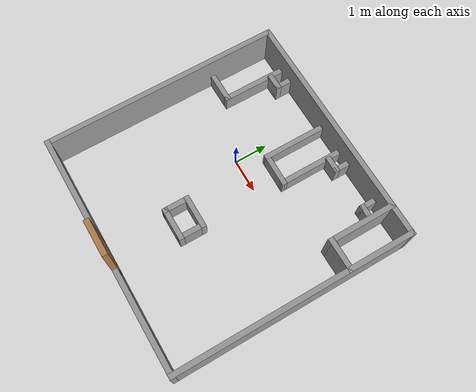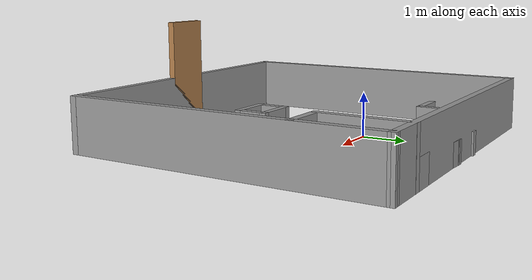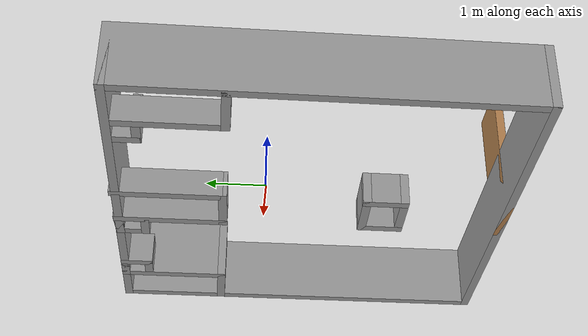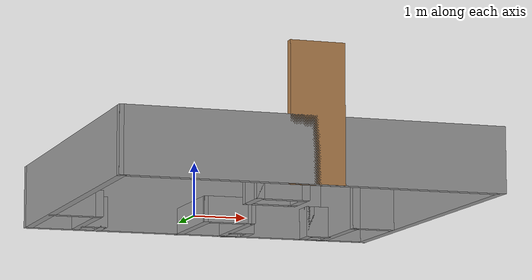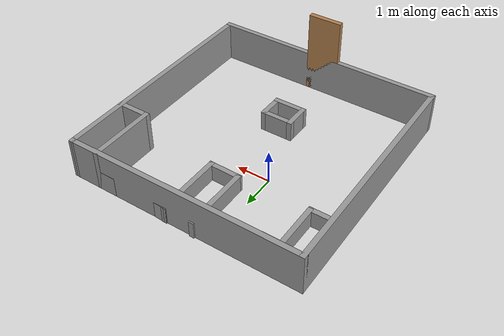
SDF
<?xml version='1.0'?>
<sdf version='1.7'>
  <model name='map1'>
    <pose>0.875504 -0.845948 0 0 -0 0</pose>
    <link name='Wall_2'>
      <collision name='Wall_2_Collision'>
        <geometry>
          <box>
            <size>7.0263 0.15 1.2</size>
          </box>
        </geometry>
        <pose>0 0 0.6 0 -0 0</pose>
      </collision>
      <visual name='Wall_2_Visual'>
        <pose>0 0 0.6 0 -0 0</pose>
        <geometry>
          <box>
            <size>7.0263 0.15 1.2</size>
          </box>
        </geometry>
        <material>
          <script>
            <uri>file://media/materials/scripts/gazebo.material</uri>
            <name>Gazebo/Grey</name>
          </script>
          <ambient>1 1 1 1</ambient>
        </material>
        <meta>
          <layer>0</layer>
        </meta>
      </visual>
      <pose>0.006496 -3.45405 0 0 -0 3.14159</pose>
    </link>
    <link name='Wall_23'>
      <collision name='Wall_23_Collision'>
        <geometry>
          <box>
            <size>2.00011 0.15 0.5</size>
          </box>
        </geometry>
        <pose>0 0 0.25 0 -0 0</pose>
      </collision>
      <visual name='Wall_23_Visual'>
        <pose>0 0 0.25 0 -0 0</pose>
        <geometry>
          <box>
            <size>2.00011 0.15 0.5</size>
          </box>
        </geometry>
        <material>
          <script>
            <uri>file://media/materials/scripts/gazebo.material</uri>
            <name>Gazebo/Grey</name>
          </script>
          <ambient>1 1 1 1</ambient>
        </material>
        <meta>
          <layer>0</layer>
        </meta>
      </visual>
      <pose>-2.5355 2.47095 0 0 -0 1.5708</pose>
    </link>
    <link name='Wall_29'>
      <collision name='Wall_29_Collision'>
        <geometry>
          <box>
            <size>0.6 0.15 0.6</size>
          </box>
        </geometry>
        <pose>0 0 0.3 0 -0 0</pose>
      </collision>
      <visual name='Wall_29_Visual'>
        <pose>0 0 0.3 0 -0 0</pose>
        <geometry>
          <box>
            <size>0.6 0.15 0.6</size>
          </box>
        </geometry>
        <material>
          <script>
            <uri>file://media/materials/scripts/gazebo.material</uri>
            <name>Gazebo/Grey</name>
          </script>
          <ambient>1 1 1 1</ambient>
        </material>
        <meta>
          <layer>0</layer>
        </meta>
      </visual>
      <pose>-2.0855 3.17095 0 0 -0 -1.5708</pose>
    </link>
    <link name='Wall_3'>
      <collision name='Wall_3_Collision'>
        <geometry>
          <box>
            <size>7.01301 0.15 1.2</size>
          </box>
        </geometry>
        <pose>0 0 0.6 0 -0 0</pose>
      </collision>
      <visual name='Wall_3_Visual'>
        <pose>0 0 0.6 0 -0 0</pose>
        <geometry>
          <box>
            <size>7.01301 0.15 1.2</size>
          </box>
        </geometry>
        <material>
          <script>
            <uri>file://media/materials/scripts/gazebo.material</uri>
            <name>Gazebo/Grey</name>
          </script>
          <ambient>1 1 1 1</ambient>
        </material>
        <meta>
          <layer>0</layer>
        </meta>
      </visual>
      <pose>-3.438 -0.022552 0 0 -0 1.57269</pose>
    </link>
    <link name='Wall_31'>
      <collision name='Wall_31_Collision'>
        <geometry>
          <box>
            <size>0.5 0.15 0.6</size>
          </box>
        </geometry>
        <pose>0 0 0.3 0 -0 0</pose>
      </collision>
      <visual name='Wall_31_Visual'>
        <pose>0 0 0.3 0 -0 0</pose>
        <geometry>
          <box>
            <size>0.5 0.15 0.6</size>
          </box>
        </geometry>
        <material>
          <script>
            <uri>file://media/materials/scripts/gazebo.material</uri>
            <name>Gazebo/Grey</name>
          </script>
          <ambient>1 1 1 1</ambient>
        </material>
        <meta>
          <layer>0</layer>
        </meta>
      </visual>
      <pose>-2.2605 2.94595 0 0 -0 3.14159</pose>
    </link>
    <link name='Wall_39'>
      <collision name='Wall_39_Collision'>
        <geometry>
          <box>
            <size>1 0.15 2.5</size>
          </box>
        </geometry>
        <pose>0 0 1.25 0 -0 0</pose>
      </collision>
      <visual name='Wall_39_Visual'>
        <pose>0 0 1.25 0 -0 0</pose>
        <geometry>
          <box>
            <size>1 0.15 2.5</size>
          </box>
        </geometry>
        <material>
          <script>
            <uri>file://media/materials/scripts/gazebo.material</uri>
            <name>Gazebo/Wood</name>
          </script>
          <ambient>1 1 1 1</ambient>
        </material>
        <meta>
          <layer>0</layer>
        </meta>
      </visual>
      <pose>0.019496 -3.45405 0 0 -0 3.14159</pose>
    </link>
    <link name='Wall_4'>
      <collision name='Wall_4_Collision'>
        <geometry>
          <box>
            <size>7.039 0.15 1.2</size>
          </box>
        </geometry>
        <pose>0 0 0.6 0 -0 0</pose>
      </collision>
      <visual name='Wall_4_Visual'>
        <pose>0 0 0.6 0 -0 0</pose>
        <geometry>
          <box>
            <size>7.039 0.15 1.2</size>
          </box>
        </geometry>
        <material>
          <script>
            <uri>file://media/materials/scripts/gazebo.material</uri>
            <name>Gazebo/Grey</name>
          </script>
          <ambient>1 1 1 1</ambient>
        </material>
        <meta>
          <layer>0</layer>
        </meta>
      </visual>
      <pose>-4e-06 3.41545 0 0 -0 0.001887</pose>
    </link>
    <link name='Wall_43'>
      <collision name='Wall_43_Collision'>
        <geometry>
          <box>
            <size>1.0001 0.15 0.6</size>
          </box>
        </geometry>
        <pose>0 0 0.3 0 -0 0</pose>
      </collision>
      <visual name='Wall_43_Visual'>
        <pose>0 0 0.3 0 -0 0</pose>
        <geometry>
          <box>
            <size>1.0001 0.15 0.6</size>
          </box>
        </geometry>
        <material>
          <script>
            <uri>file://media/materials/scripts/gazebo.material</uri>
            <name>Gazebo/Grey</name>
          </script>
          <ambient>1 1 1 1</ambient>
        </material>
        <meta>
          <layer>0</layer>
        </meta>
      </visual>
      <pose>0.019496 -1.60405 0 0 -0 0</pose>
    </link>
    <link name='Wall_44'>
      <collision name='Wall_44_Collision'>
        <geometry>
          <box>
            <size>0.813 0.15 0.6</size>
          </box>
        </geometry>
        <pose>0 0 0.3 0 -0 0</pose>
      </collision>
      <visual name='Wall_44_Visual'>
        <pose>0 0 0.3 0 -0 0</pose>
        <geometry>
          <box>
            <size>0.813 0.15 0.6</size>
          </box>
        </geometry>
        <material>
          <script>
            <uri>file://media/materials/scripts/gazebo.material</uri>
            <name>Gazebo/Grey</name>
          </script>
          <ambient>1 1 1 1</ambient>
        </material>
        <meta>
          <layer>0</layer>
        </meta>
      </visual>
      <pose>0.444496 -1.27255 0 0 -0 1.5708</pose>
    </link>
    <link name='Wall_45'>
      <collision name='Wall_45_Collision'>
        <geometry>
          <box>
            <size>1.0001 0.15 0.6</size>
          </box>
        </geometry>
        <pose>0 0 0.3 0 -0 0</pose>
      </collision>
      <visual name='Wall_45_Visual'>
        <pose>0 0 0.3 0 -0 0</pose>
        <geometry>
          <box>
            <size>1.0001 0.15 0.6</size>
          </box>
        </geometry>
        <material>
          <script>
            <uri>file://media/materials/scripts/gazebo.material</uri>
            <name>Gazebo/Grey</name>
          </script>
          <ambient>1 1 1 1</ambient>
        </material>
        <meta>
          <layer>0</layer>
        </meta>
      </visual>
      <pose>0.019496 -0.941052 0 0 -0 3.14159</pose>
    </link>
    <link name='Wall_46'>
      <collision name='Wall_46_Collision'>
        <geometry>
          <box>
            <size>0.813 0.15 0.6</size>
          </box>
        </geometry>
        <pose>0 0 0.3 0 -0 0</pose>
      </collision>
      <visual name='Wall_46_Visual'>
        <pose>0 0 0.3 0 -0 0</pose>
        <geometry>
          <box>
            <size>0.813 0.15 0.6</size>
          </box>
        </geometry>
        <material>
          <script>
            <uri>file://media/materials/scripts/gazebo.material</uri>
            <name>Gazebo/Grey</name>
          </script>
          <ambient>1 1 1 1</ambient>
        </material>
        <meta>
          <layer>0</layer>
        </meta>
      </visual>
      <pose>-0.405504 -1.27255 0 0 -0 -1.5708</pose>
    </link>
    <link name='Wall_5'>
      <collision name='Wall_5_Collision'>
        <geometry>
          <box>
            <size>7.026 0.15 1.2</size>
          </box>
        </geometry>
        <pose>0 0 0.6 0 -0 0</pose>
      </collision>
      <visual name='Wall_5_Visual'>
        <pose>0 0 0.6 0 -0 0</pose>
        <geometry>
          <box>
            <size>7.026 0.15 1.2</size>
          </box>
        </geometry>
        <material>
          <script>
            <uri>file://media/materials/scripts/gazebo.material</uri>
            <name>Gazebo/Grey</name>
          </script>
          <ambient>1 1 1 1</ambient>
        </material>
        <meta>
          <layer>0</layer>
        </meta>
      </visual>
      <pose>3.4445 -0.016052 0 0 -0 -1.5708</pose>
    </link>
    <link name='Wall_50'>
      <collision name='Wall_50_Collision'>
        <geometry>
          <box>
            <size>2.03025 0.15 0.5</size>
          </box>
        </geometry>
        <pose>0 0 0.25 0 -0 0</pose>
      </collision>
      <visual name='Wall_50_Visual'>
        <pose>0 0 0.25 0 -0 0</pose>
        <geometry>
          <box>
            <size>2.03025 0.15 0.5</size>
          </box>
        </geometry>
        <material>
          <script>
            <uri>file://media/materials/scripts/gazebo.material</uri>
            <name>Gazebo/Grey</name>
          </script>
          <ambient>1 1 1 1</ambient>
        </material>
        <meta>
          <layer>0</layer>
        </meta>
      </visual>
      <pose>0.459496 2.49907 0 0 -0 -1.5708</pose>
    </link>
    <link name='Wall_51'>
      <collision name='Wall_51_Collision'>
        <geometry>
          <box>
            <size>1.01513 0.15 0.5</size>
          </box>
        </geometry>
        <pose>0 0 0.25 0 -0 0</pose>
      </collision>
      <visual name='Wall_51_Visual'>
        <pose>0 0 0.25 0 -0 0</pose>
        <geometry>
          <box>
            <size>1.01513 0.15 0.5</size>
          </box>
        </geometry>
        <material>
          <script>
            <uri>file://media/materials/scripts/gazebo.material</uri>
            <name>Gazebo/Grey</name>
          </script>
          <ambient>1 1 1 1</ambient>
        </material>
        <meta>
          <layer>0</layer>
        </meta>
      </visual>
      <pose>0.026996 1.56645 0 0 -0 3.12425</pose>
    </link>
    <link name='Wall_52'>
      <collision name='Wall_52_Collision'>
        <geometry>
          <box>
            <size>2.03025 0.15 0.5</size>
          </box>
        </geometry>
        <pose>0 0 0.25 0 -0 0</pose>
      </collision>
      <visual name='Wall_52_Visual'>
        <pose>0 0 0.25 0 -0 0</pose>
        <geometry>
          <box>
            <size>2.03025 0.15 0.5</size>
          </box>
        </geometry>
        <material>
          <script>
            <uri>file://media/materials/scripts/gazebo.material</uri>
            <name>Gazebo/Grey</name>
          </script>
          <ambient>1 1 1 1</ambient>
        </material>
        <meta>
          <layer>0</layer>
        </meta>
      </visual>
      <pose>-0.405504 2.51407 0 0 -0 1.5708</pose>
    </link>
    <link name='Wall_57'>
      <collision name='Wall_57_Collision'>
        <geometry>
          <box>
            <size>0.58605 0.15 0.5</size>
          </box>
        </geometry>
        <pose>0 0 0.25 0 -0 0</pose>
      </collision>
      <visual name='Wall_57_Visual'>
        <pose>0 0 0.25 0 -0 0</pose>
        <geometry>
          <box>
            <size>0.58605 0.15 0.5</size>
          </box>
        </geometry>
        <material>
          <script>
            <uri>file://media/materials/scripts/gazebo.material</uri>
            <name>Gazebo/Grey</name>
          </script>
          <ambient>1 1 1 1</ambient>
        </material>
        <meta>
          <layer>0</layer>
        </meta>
      </visual>
      <pose>0.676996 3.42407 0 0 -0 -0.069419</pose>
    </link>
    <link name='Wall_59'>
      <collision name='Wall_59_Collision'>
        <geometry>
          <box>
            <size>0.6 0.15 0.6</size>
          </box>
        </geometry>
        <pose>0 0 0.3 0 -0 0</pose>
      </collision>
      <visual name='Wall_59_Visual'>
        <pose>0 0 0.3 0 -0 0</pose>
        <geometry>
          <box>
            <size>0.6 0.15 0.6</size>
          </box>
        </geometry>
        <material>
          <script>
            <uri>file://media/materials/scripts/gazebo.material</uri>
            <name>Gazebo/Grey</name>
          </script>
          <ambient>1 1 1 1</ambient>
        </material>
        <meta>
          <layer>0</layer>
        </meta>
      </visual>
      <pose>0.894496 3.18395 0 0 -0 -1.5708</pose>
    </link>
    <link name='Wall_61'>
      <collision name='Wall_61_Collision'>
        <geometry>
          <box>
            <size>0.5 0.15 0.6</size>
          </box>
        </geometry>
        <pose>0 0 0.3 0 -0 0</pose>
      </collision>
      <visual name='Wall_61_Visual'>
        <pose>0 0 0.3 0 -0 0</pose>
        <geometry>
          <box>
            <size>0.5 0.15 0.6</size>
          </box>
        </geometry>
        <material>
          <script>
            <uri>file://media/materials/scripts/gazebo.material</uri>
            <name>Gazebo/Grey</name>
          </script>
          <ambient>1 1 1 1</ambient>
        </material>
        <meta>
          <layer>0</layer>
        </meta>
      </visual>
      <pose>0.719496 2.95895 0 0 -0 3.14159</pose>
    </link>
    <link name='Wall_64'>
      <collision name='Wall_64_Collision'>
        <geometry>
          <box>
            <size>1 0.15 1.2</size>
          </box>
        </geometry>
        <pose>0 0 0.6 0 -0 0</pose>
      </collision>
      <visual name='Wall_64_Visual'>
        <pose>0 0 0.6 0 -0 0</pose>
        <geometry>
          <box>
            <size>1 0.15 1.2</size>
          </box>
        </geometry>
        <material>
          <script>
            <uri>file://media/materials/scripts/gazebo.material</uri>
            <name>Gazebo/Grey</name>
          </script>
          <ambient>1 1 1 1</ambient>
        </material>
        <meta>
          <layer>0</layer>
        </meta>
      </visual>
      <pose>3.0195 1.57195 0 0 -0 3.14159</pose>
    </link>
    <link name='Wall_65'>
      <collision name='Wall_65_Collision'>
        <geometry>
          <box>
            <size>2 0.15 1.2</size>
          </box>
        </geometry>
        <pose>0 0 0.6 0 -0 0</pose>
      </collision>
      <visual name='Wall_65_Visual'>
        <pose>0 0 0.6 0 -0 0</pose>
        <geometry>
          <box>
            <size>2 0.15 1.2</size>
          </box>
        </geometry>
        <material>
          <script>
            <uri>file://media/materials/scripts/gazebo.material</uri>
            <name>Gazebo/Grey</name>
          </script>
          <ambient>1 1 1 1</ambient>
        </material>
        <meta>
          <layer>0</layer>
        </meta>
      </visual>
      <pose>2.5945 2.49695 0 0 -0 1.5708</pose>
    </link>
    <link name='Wall_66'>
      <collision name='Wall_66_Collision'>
        <geometry>
          <box>
            <size>0.6 0.15 0.6</size>
          </box>
        </geometry>
        <pose>0 0 0.3 0 -0 0</pose>
      </collision>
      <visual name='Wall_66_Visual'>
        <pose>0 0 0.3 0 -0 0</pose>
        <geometry>
          <box>
            <size>0.6 0.15 0.6</size>
          </box>
        </geometry>
        <material>
          <script>
            <uri>file://media/materials/scripts/gazebo.material</uri>
            <name>Gazebo/Grey</name>
          </script>
          <ambient>1 1 1 1</ambient>
        </material>
        <meta>
          <layer>0</layer>
        </meta>
      </visual>
      <pose>2.3695 3.42195 0 0 -0 3.14159</pose>
    </link>
    <link name='Wall_68'>
      <collision name='Wall_68_Collision'>
        <geometry>
          <box>
            <size>0.6 0.15 0.6</size>
          </box>
        </geometry>
        <pose>0 0 0.3 0 -0 0</pose>
      </collision>
      <visual name='Wall_68_Visual'>
        <pose>0 0 0.3 0 -0 0</pose>
        <geometry>
          <box>
            <size>0.6 0.15 0.6</size>
          </box>
        </geometry>
        <material>
          <script>
            <uri>file://media/materials/scripts/gazebo.material</uri>
            <name>Gazebo/Grey</name>
          </script>
          <ambient>1 1 1 1</ambient>
        </material>
        <meta>
          <layer>0</layer>
        </meta>
      </visual>
      <pose>2.1445 3.19695 0 0 -0 -1.5708</pose>
    </link>
    <link name='Wall_70'>
      <collision name='Wall_70_Collision'>
        <geometry>
          <box>
            <size>0.5 0.15 0.6</size>
          </box>
        </geometry>
        <pose>0 0 0.3 0 -0 0</pose>
      </collision>
      <visual name='Wall_70_Visual'>
        <pose>0 0 0.3 0 -0 0</pose>
        <geometry>
          <box>
            <size>0.5 0.15 0.6</size>
          </box>
        </geometry>
        <material>
          <script>
            <uri>file://media/materials/scripts/gazebo.material</uri>
            <name>Gazebo/Grey</name>
          </script>
          <ambient>1 1 1 1</ambient>
        </material>
        <meta>
          <layer>0</layer>
        </meta>
      </visual>
      <pose>2.3195 2.97195 0 0 -0 0</pose>
    </link>
    <link name='Wall_8'>
      <collision name='Wall_8_Collision'>
        <geometry>
          <box>
            <size>1.02 0.15 0.5</size>
          </box>
        </geometry>
        <pose>0 0 0.25 0 -0 0</pose>
      </collision>
      <visual name='Wall_8_Visual'>
        <pose>0 0 0.25 0 -0 0</pose>
        <geometry>
          <box>
            <size>1.02 0.15 0.5</size>
          </box>
        </geometry>
        <material>
          <script>
            <uri>file://media/materials/scripts/gazebo.material</uri>
            <name>Gazebo/Grey</name>
          </script>
          <ambient>1 1 1 1</ambient>
        </material>
        <meta>
          <layer>0</layer>
        </meta>
      </visual>
      <pose>-2.9705 1.54595 0 0 -0 0</pose>
    </link>
    <static>1</static>
  </model>
</sdf>
